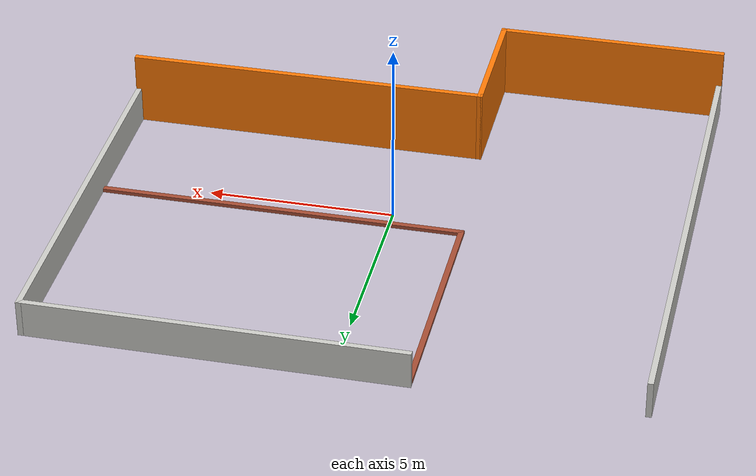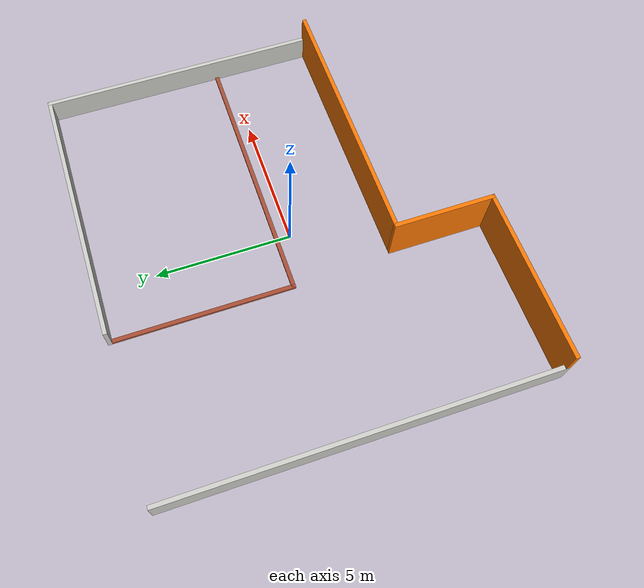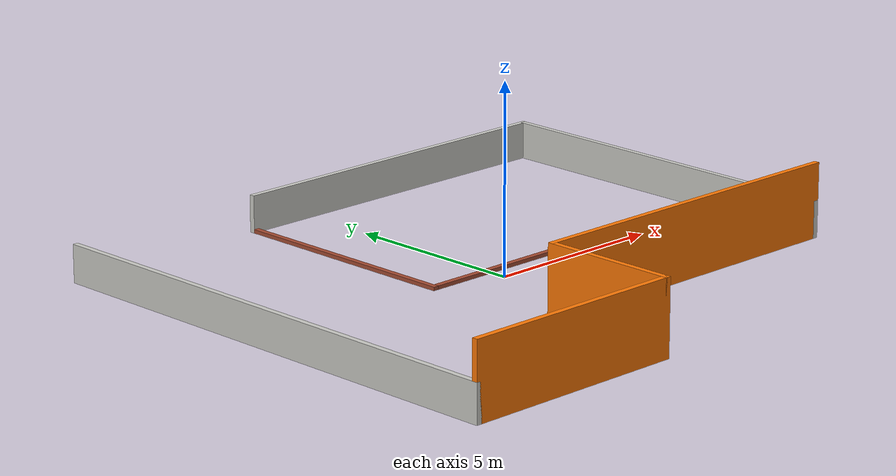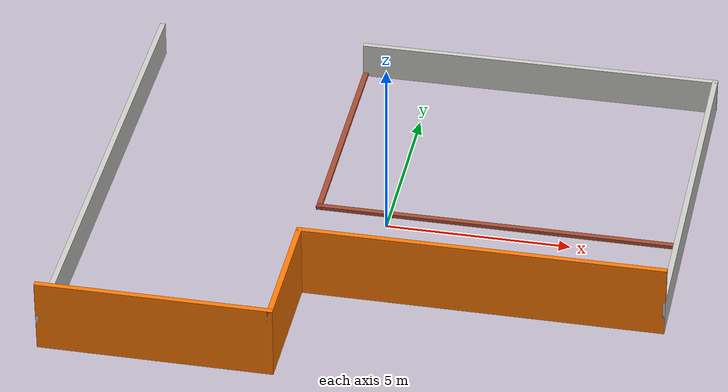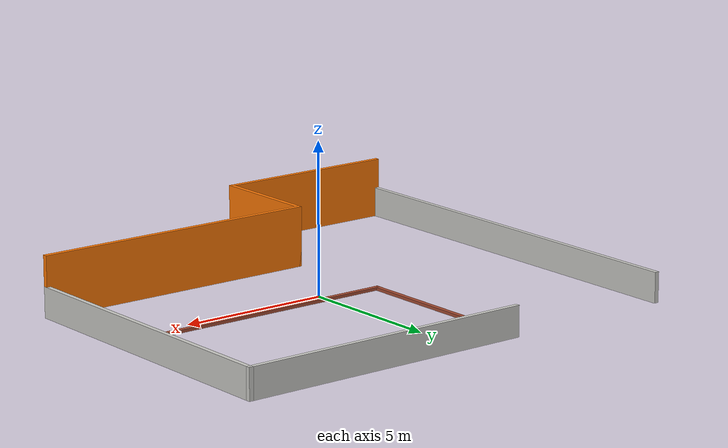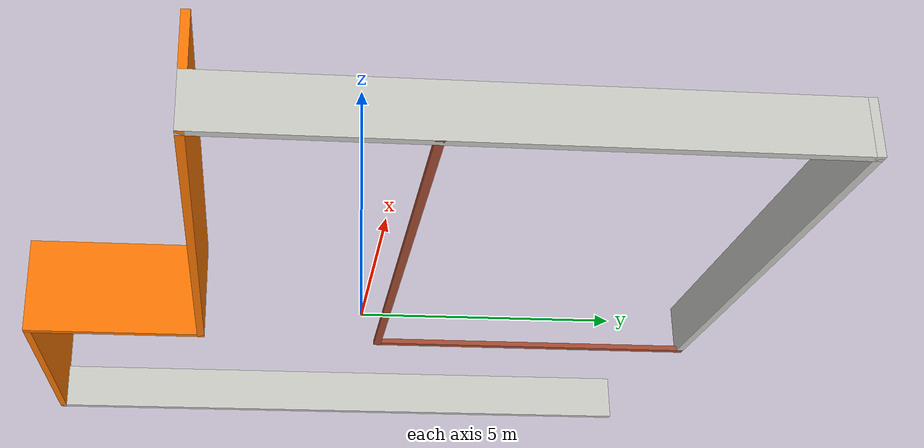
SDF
<?xml version='1.0'?>
<sdf version='1.6'>
  <model name='Map1_Driveway'>
    <pose frame=''>0.062 0.121 0 0 -0 0</pose>
    <link name='Wall_21'>
      <collision name='Wall_21_Collision'>
        <geometry>
          <box>
            <size>14 0.15 1</size>
          </box>
        </geometry>
        <pose frame=''>0 0 0.5 0 -0 0</pose>
      </collision>
      <visual name='Wall_21_Visual'>
        <pose frame=''>0 0 0.5 0 -0 0</pose>
        <geometry>
          <box>
            <size>14 0.15 1</size>
          </box>
        </geometry>
        <material>
          <script>
            <uri>file://media/materials/scripts/gazebo.material</uri>
            <name>Gazebo/CeilingTiled</name>
          </script>
          <ambient>1 1 1 1</ambient>
        </material>
        <meta>
          <layer>0</layer>
        </meta>
      </visual>
      <pose frame=''>-7.85 -0.05 0 0 -0 -1.5708</pose>
    </link>
    <link name='Wall_23'>
      <collision name='Wall_23_Collision'>
        <geometry>
          <box>
            <size>6.25 0.15 2</size>
          </box>
        </geometry>
        <pose frame=''>0 0 1 0 -0 0</pose>
      </collision>
      <visual name='Wall_23_Visual'>
        <pose frame=''>0 0 1 0 -0 0</pose>
        <geometry>
          <box>
            <size>6.25 0.15 2</size>
          </box>
        </geometry>
        <material>
          <script>
            <uri>file://media/materials/scripts/gazebo.material</uri>
            <name>Gazebo/Grey</name>
          </script>
          <ambient>0.996078 0.47451 0.0196078 1</ambient>
        </material>
        <meta>
          <layer>0</layer>
        </meta>
      </visual>
      <pose frame=''>-4.8 -6.975 0 0 -0 0</pose>
    </link>
    <link name='Wall_24'>
      <collision name='Wall_24_Collision'>
        <geometry>
          <box>
            <size>3.75 0.15 2</size>
          </box>
        </geometry>
        <pose frame=''>0 0 1 0 -0 0</pose>
      </collision>
      <visual name='Wall_24_Visual'>
        <pose frame=''>0 0 1 0 -0 0</pose>
        <geometry>
          <box>
            <size>3.75 0.15 2</size>
          </box>
        </geometry>
        <material>
          <script>
            <uri>file://media/materials/scripts/gazebo.material</uri>
            <name>Gazebo/Grey</name>
          </script>
          <ambient>0.996078 0.47451 0.0196078 1</ambient>
        </material>
        <meta>
          <layer>0</layer>
        </meta>
      </visual>
      <pose frame=''>-1.75 -5.175 0 0 -0 1.5708</pose>
    </link>
    <link name='Wall_25'>
      <collision name='Wall_25_Collision'>
        <geometry>
          <box>
            <size>9.75 0.15 2</size>
          </box>
        </geometry>
        <pose frame=''>0 0 1 0 -0 0</pose>
      </collision>
      <visual name='Wall_25_Visual'>
        <pose frame=''>0 0 1 0 -0 0</pose>
        <geometry>
          <box>
            <size>9.75 0.15 2</size>
          </box>
        </geometry>
        <material>
          <script>
            <uri>file://media/materials/scripts/gazebo.material</uri>
            <name>Gazebo/Grey</name>
          </script>
          <ambient>0.996078 0.47451 0.0196078 1</ambient>
        </material>
        <meta>
          <layer>0</layer>
        </meta>
      </visual>
      <pose frame=''>3.05 -3.375 0 0 -0 0</pose>
    </link>
    <link name='Wall_26'>
      <collision name='Wall_26_Collision'>
        <geometry>
          <box>
            <size>10.5 0.15 1</size>
          </box>
        </geometry>
        <pose frame=''>0 0 0.5 0 -0 0</pose>
      </collision>
      <visual name='Wall_26_Visual'>
        <pose frame=''>0 0 0.5 0 -0 0</pose>
        <geometry>
          <box>
            <size>10.5 0.15 1</size>
          </box>
        </geometry>
        <material>
          <script>
            <uri>file://media/materials/scripts/gazebo.material</uri>
            <name>Gazebo/CeilingTiled</name>
          </script>
          <ambient>1 1 1 1</ambient>
        </material>
        <meta>
          <layer>0</layer>
        </meta>
      </visual>
      <pose frame=''>7.85 1.8 0 0 -0 1.5708</pose>
    </link>
    <link name='Wall_27'>
      <collision name='Wall_27_Collision'>
        <geometry>
          <box>
            <size>10 0.15 1</size>
          </box>
        </geometry>
        <pose frame=''>0 0 0.5 0 -0 0</pose>
      </collision>
      <visual name='Wall_27_Visual'>
        <pose frame=''>0 0 0.5 0 -0 0</pose>
        <geometry>
          <box>
            <size>10 0.15 1</size>
          </box>
        </geometry>
        <material>
          <script>
            <uri>file://media/materials/scripts/gazebo.material</uri>
            <name>Gazebo/CeilingTiled</name>
          </script>
          <ambient>1 1 1 1</ambient>
        </material>
        <meta>
          <layer>0</layer>
        </meta>
      </visual>
      <pose frame=''>2.925 6.975 0 0 -0 3.14159</pose>
    </link>
    <link name='Wall_28'>
      <collision name='Wall_28_Collision'>
        <geometry>
          <box>
            <size>6.75 0.15 0.1</size>
          </box>
        </geometry>
        <pose frame=''>0 0 0.05 0 -0 0</pose>
      </collision>
      <visual name='Wall_28_Visual'>
        <pose frame=''>0 0 0.05 0 -0 0</pose>
        <geometry>
          <box>
            <size>6.75 0.15 0.1</size>
          </box>
        </geometry>
        <material>
          <script>
            <uri>file://media/materials/scripts/gazebo.material</uri>
            <name>Gazebo/Bricks</name>
          </script>
          <ambient>1 1 1 1</ambient>
        </material>
        <meta>
          <layer>0</layer>
        </meta>
      </visual>
      <pose frame=''>-2 3.675 0 0 -0 -1.5708</pose>
    </link>
    <link name='Wall_29'>
      <collision name='Wall_29_Collision'>
        <geometry>
          <box>
            <size>10 0.15 0.1</size>
          </box>
        </geometry>
        <pose frame=''>0 0 0.05 0 -0 0</pose>
      </collision>
      <visual name='Wall_29_Visual'>
        <pose frame=''>0 0 0.05 0 -0 0</pose>
        <geometry>
          <box>
            <size>10 0.15 0.1</size>
          </box>
        </geometry>
        <material>
          <script>
            <uri>file://media/materials/scripts/gazebo.material</uri>
            <name>Gazebo/Bricks</name>
          </script>
          <ambient>1 1 1 1</ambient>
        </material>
        <meta>
          <layer>0</layer>
        </meta>
      </visual>
      <pose frame=''>2.925 0.375 0 0 -0 0</pose>
    </link>
    <static>1</static>
  </model>
</sdf>
